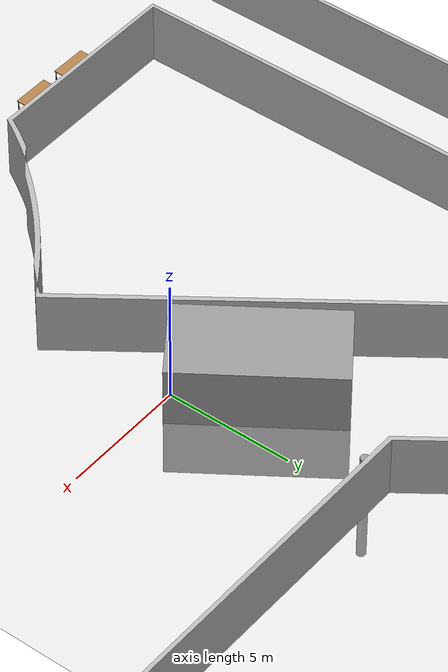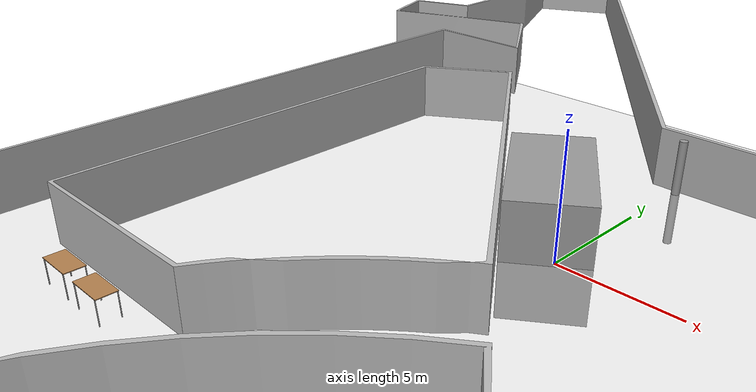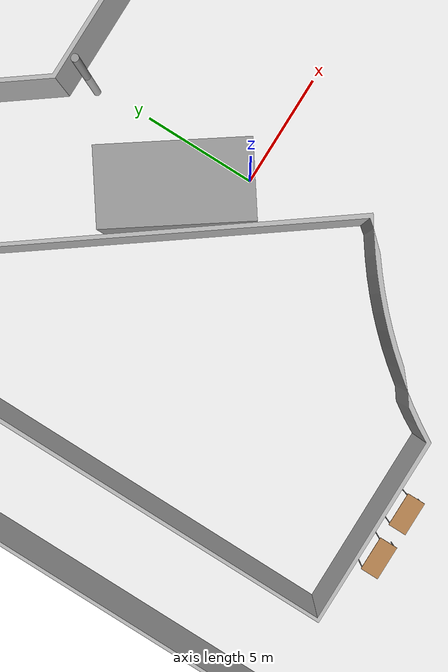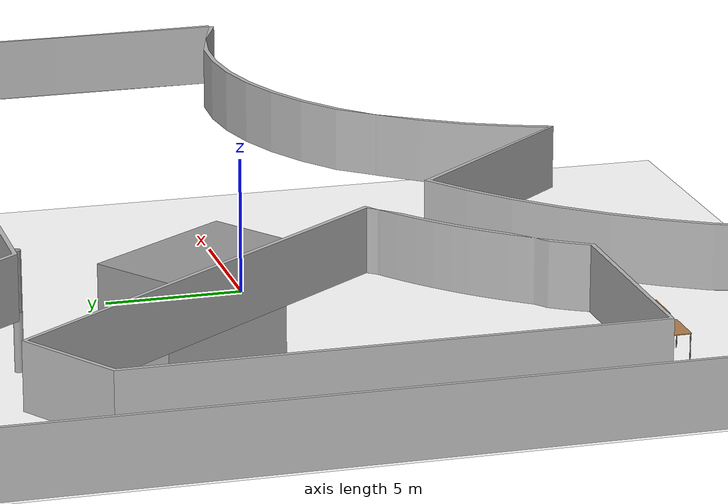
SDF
<sdf version="1.7">
 <world name="default">
  <model name="ground_plane">
   <static>1</static>
   <link name="link">
    <collision name="collision">
     <geometry><plane><normal>0 0 1</normal><size>100 100</size></plane></geometry>
     <surface>
      <contact><collide_bitmask>65535</collide_bitmask></contact>
      <friction><ode><mu>100</mu><mu2>50</mu2></ode></friction>
     </surface>
    </collision>
    <visual name="visual">
     <cast_shadows>0</cast_shadows>
     <geometry><plane><normal>0 0 1</normal><size>100 100</size></plane></geometry>
     <material>
      <script><uri>file://media/materials/scripts/gazebo.material</uri><name>Gazebo/Grey</name></script>
     </material>
    </visual>
   </link>
  </model>
  <model name="cw4">
   <static>1</static>
   <link name="link">
    <collision name="collision">
     <geometry><mesh><uri>model://dupa/meshes/mapa.stl</uri><scale>1 1 1</scale></mesh></geometry>
    </collision>
    <visual name="visual">
     <geometry><mesh><uri>model://dupa/meshes/mapa.stl</uri><scale>1 1 1</scale></mesh></geometry>
    </visual>
   </link>
   <pose>-2.21075 -1.90288 0 0 -0 0</pose>
  </model>
  <model name="Table_0">
   <static>1</static>
   <link name="link">
    <collision name="surface">
     <pose>0 0 1 0 -0 0</pose>
     <geometry><box><size>1.5 0.8 0.03</size></box></geometry>
     <surface><friction><ode><mu>0.6</mu><mu2>0.6</mu2></ode></friction></surface>
    </collision>
    <visual name="visual1">
     <pose>0 0 1 0 -0 0</pose>
     <geometry><box><size>1.5 0.8 0.03</size></box></geometry>
     <material>
      <diffuse>1 1 1 1</diffuse>
      <script><uri>file://media/materials/scripts/gazebo.material</uri><name>Gazebo/Wood</name></script>
      <pbr><metal><albedo_map>model://Table/Table_Diffuse.jpg</albedo_map></metal></pbr>
     </material>
    </visual>
    <collision name="front_left_leg">
     <pose>0.68 0.38 0.5 0 -0 0</pose>
     <geometry><cylinder><radius>0.02</radius><length>1</length></cylinder></geometry>
    </collision>
    <visual name="front_left_leg">
     <pose>0.68 0.38 0.5 0 -0 0</pose>
     <geometry><cylinder><radius>0.02</radius><length>1</length></cylinder></geometry>
     <material>
      <diffuse>0.5 0.5 0.5 1</diffuse>
      <script><uri>file://media/materials/scripts/gazebo.material</uri><name>Gazebo/Grey</name></script>
     </material>
    </visual>
    <collision name="front_right_leg">
     <pose>0.68 -0.38 0.5 0 -0 0</pose>
     <geometry><cylinder><radius>0.02</radius><length>1</length></cylinder></geometry>
    </collision>
    <visual name="front_right_leg">
     <pose>0.68 -0.38 0.5 0 -0 0</pose>
     <geometry><cylinder><radius>0.02</radius><length>1</length></cylinder></geometry>
     <material>
      <diffuse>0.5 0.5 0.5 1</diffuse>
      <script><uri>file://media/materials/scripts/gazebo.material</uri><name>Gazebo/Grey</name></script>
     </material>
    </visual>
    <collision name="back_right_leg">
     <pose>-0.68 -0.38 0.5 0 -0 0</pose>
     <geometry><cylinder><radius>0.02</radius><length>1</length></cylinder></geometry>
    </collision>
    <visual name="back_right_leg">
     <pose>-0.68 -0.38 0.5 0 -0 0</pose>
     <geometry><cylinder><radius>0.02</radius><length>1</length></cylinder></geometry>
     <material>
      <diffuse>0.5 0.5 0.5 1</diffuse>
      <script><uri>file://media/materials/scripts/gazebo.material</uri><name>Gazebo/Grey</name></script>
     </material>
    </visual>
    <collision name="back_left_leg">
     <pose>-0.68 0.38 0.5 0 -0 0</pose>
     <geometry><cylinder><radius>0.02</radius><length>1</length></cylinder></geometry>
    </collision>
    <visual name="back_left_leg">
     <pose>-0.68 0.38 0.5 0 -0 0</pose>
     <geometry><cylinder><radius>0.02</radius><length>1</length></cylinder></geometry>
     <material>
      <diffuse>0.5 0.5 0.5 1</diffuse>
      <script><uri>file://media/materials/scripts/gazebo.material</uri><name>Gazebo/Grey</name></script>
     </material>
    </visual>
   </link>
   <pose>-10.4015 -12.7436 0 0 -0 0</pose>
  </model>
  <model name="Table_1">
   <static>1</static>
   <link name="link">
    <collision name="surface">
     <pose>0 0 1 0 -0 0</pose>
     <geometry><box><size>1.5 0.8 0.03</size></box></geometry>
     <surface><friction><ode><mu>0.6</mu><mu2>0.6</mu2></ode></friction></surface>
    </collision>
    <visual name="visual1">
     <pose>0 0 1 0 -0 0</pose>
     <geometry><box><size>1.5 0.8 0.03</size></box></geometry>
     <material>
      <diffuse>1 1 1 1</diffuse>
      <script><uri>file://media/materials/scripts/gazebo.material</uri><name>Gazebo/Wood</name></script>
      <pbr><metal><albedo_map>model://Table/Table_Diffuse.jpg</albedo_map></metal></pbr>
     </material>
    </visual>
    <collision name="front_left_leg">
     <pose>0.68 0.38 0.5 0 -0 0</pose>
     <geometry><cylinder><radius>0.02</radius><length>1</length></cylinder></geometry>
    </collision>
    <visual name="front_left_leg">
     <pose>0.68 0.38 0.5 0 -0 0</pose>
     <geometry><cylinder><radius>0.02</radius><length>1</length></cylinder></geometry>
     <material>
      <diffuse>0.5 0.5 0.5 1</diffuse>
      <script><uri>file://media/materials/scripts/gazebo.material</uri><name>Gazebo/Grey</name></script>
     </material>
    </visual>
    <collision name="front_right_leg">
     <pose>0.68 -0.38 0.5 0 -0 0</pose>
     <geometry><cylinder><radius>0.02</radius><length>1</length></cylinder></geometry>
    </collision>
    <visual name="front_right_leg">
     <pose>0.68 -0.38 0.5 0 -0 0</pose>
     <geometry><cylinder><radius>0.02</radius><length>1</length></cylinder></geometry>
     <material>
      <diffuse>0.5 0.5 0.5 1</diffuse>
      <script><uri>file://media/materials/scripts/gazebo.material</uri><name>Gazebo/Grey</name></script>
     </material>
    </visual>
    <collision name="back_right_leg">
     <pose>-0.68 -0.38 0.5 0 -0 0</pose>
     <geometry><cylinder><radius>0.02</radius><length>1</length></cylinder></geometry>
    </collision>
    <visual name="back_right_leg">
     <pose>-0.68 -0.38 0.5 0 -0 0</pose>
     <geometry><cylinder><radius>0.02</radius><length>1</length></cylinder></geometry>
     <material>
      <diffuse>0.5 0.5 0.5 1</diffuse>
      <script><uri>file://media/materials/scripts/gazebo.material</uri><name>Gazebo/Grey</name></script>
     </material>
    </visual>
    <collision name="back_left_leg">
     <pose>-0.68 0.38 0.5 0 -0 0</pose>
     <geometry><cylinder><radius>0.02</radius><length>1</length></cylinder></geometry>
    </collision>
    <visual name="back_left_leg">
     <pose>-0.68 0.38 0.5 0 -0 0</pose>
     <geometry><cylinder><radius>0.02</radius><length>1</length></cylinder></geometry>
     <material>
      <diffuse>0.5 0.5 0.5 1</diffuse>
      <script><uri>file://media/materials/scripts/gazebo.material</uri><name>Gazebo/Grey</name></script>
     </material>
    </visual>
   </link>
   <pose>-8.27464 -12.7467 0 0 -0 0</pose>
  </model>
  <model name="filar_15">
   <link name="link">
    <inertial>
     <mass>0.532177</mass>
     <inertia>
      <ixx>0.930096</ixx>
      <ixy>0</ixy>
      <ixz>0</ixz>
      <iyy>0.930096</iyy>
      <iyz>0</iyz>
      <izz>0.00774183</izz>
     </inertia>
    </inertial>
    <visual name="visual">
     <geometry><cylinder><radius>0.170572</radius><length>4.57005</length></cylinder></geometry>
     <material>
      <script><name>Gazebo/Grey</name><uri>file://media/materials/scripts/gazebo.material</uri></script>
      <shader type="pixel"/>
     </material>
    </visual>
    <collision name="collision">
     <geometry><cylinder><radius>0.170572</radius><length>4.57005</length></cylinder></geometry>
     <surface>
      <friction>
       <ode><mu>1</mu><mu2>1</mu2><fdir1>0 0 0</fdir1><slip1>0</slip1><slip2>0</slip2></ode>
       <torsional>
        <coefficient>1</coefficient>
        <patch_radius>0</patch_radius>
        <surface_radius>0</surface_radius>
        <use_patch_radius>1</use_patch_radius>
        <ode><slip>0</slip></ode>
       </torsional>
      </friction>
      <bounce><restitution_coefficient>0</restitution_coefficient><threshold>1e+06</threshold></bounce>
      <contact>
       <collide_without_contact>0</collide_without_contact>
       <collide_without_contact_bitmask>1</collide_without_contact_bitmask>
       <collide_bitmask>1</collide_bitmask>
       <ode>
        <soft_cfm>0</soft_cfm>
        <soft_erp>0.2</soft_erp>
        <kp>1e+13</kp>
        <kd>1</kd>
        <max_vel>0.01</max_vel>
        <min_depth>0</min_depth>
       </ode>
       <bullet>
        <split_impulse>1</split_impulse>
        <split_impulse_penetration_threshold>-0.01</split_impulse_penetration_threshold>
        <soft_cfm>0</soft_cfm>
        <soft_erp>0.2</soft_erp>
        <kp>1e+13</kp>
        <kd>1</kd>
       </bullet>
      </contact>
     </surface>
    </collision>
   </link>
   <static>0</static>
   <pose>0.098832 8.17743 0 0 -0 0</pose>
  </model>
  <model name="unit_box_0">
   <link name="link">
    <inertial>
     <mass>99.7111</mass>
     <inertia><ixx>280.232</ixx><ixy>0</ixy><ixz>0</ixz><iyy>519.135</iyy><iyz>0</iyz><izz>421.831</izz></inertia>
    </inertial>
    <visual name="visual">
     <geometry><box><size>6.30547 3.31775 4.76632</size></box></geometry>
     <material>
      <script><name>Gazebo/Grey</name><uri>file://media/materials/scripts/gazebo.material</uri></script>
      <shader type="pixel"/>
     </material>
    </visual>
    <collision name="collision">
     <geometry><box><size>6.30547 3.31775 4.76632</size></box></geometry>
     <surface>
      <friction>
       <ode><mu>1</mu><mu2>1</mu2><fdir1>0 0 0</fdir1><slip1>0</slip1><slip2>0</slip2></ode>
       <torsional>
        <coefficient>1</coefficient>
        <patch_radius>0</patch_radius>
        <surface_radius>0</surface_radius>
        <use_patch_radius>1</use_patch_radius>
        <ode><slip>0</slip></ode>
       </torsional>
      </friction>
      <bounce><restitution_coefficient>0</restitution_coefficient><threshold>1e+06</threshold></bounce>
      <contact>
       <collide_without_contact>0</collide_without_contact>
       <collide_without_contact_bitmask>1</collide_without_contact_bitmask>
       <collide_bitmask>1</collide_bitmask>
       <ode>
        <soft_cfm>0</soft_cfm>
        <soft_erp>0.2</soft_erp>
        <kp>1e+13</kp>
        <kd>1</kd>
        <max_vel>0.01</max_vel>
        <min_depth>0</min_depth>
       </ode>
       <bullet>
        <split_impulse>1</split_impulse>
        <split_impulse_penetration_threshold>-0.01</split_impulse_penetration_threshold>
        <soft_cfm>0</soft_cfm>
        <soft_erp>0.2</soft_erp>
        <kp>1e+13</kp>
        <kd>1</kd>
       </bullet>
      </contact>
     </surface>
    </collision>
   </link>
   <static>0</static>
   <pose>-1.97692 2.24478 0 0 0 -0.957131</pose>
  </model>
 </world>
</sdf>
